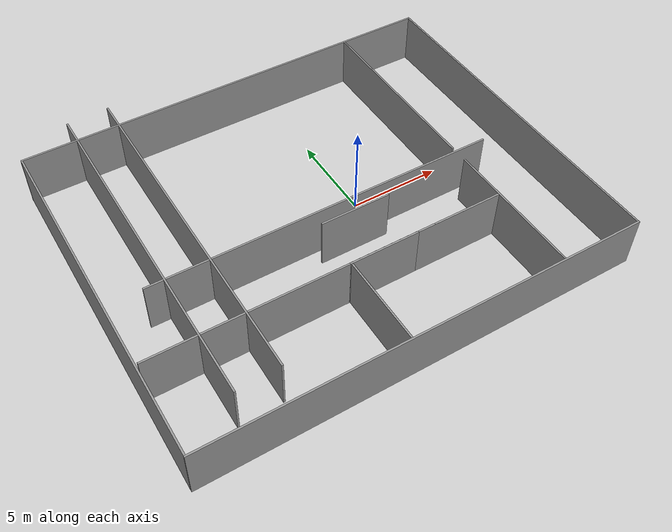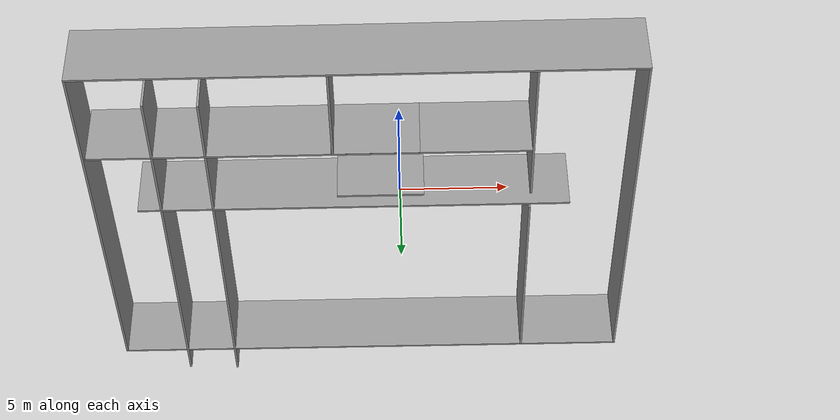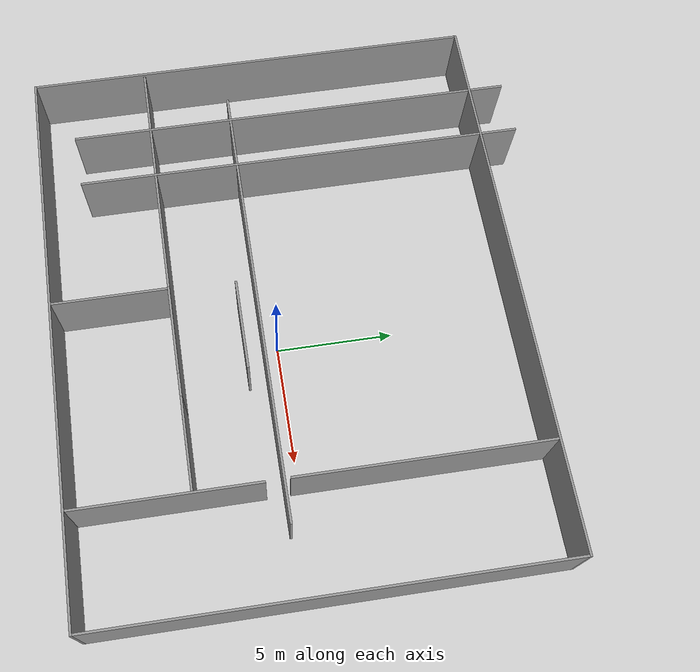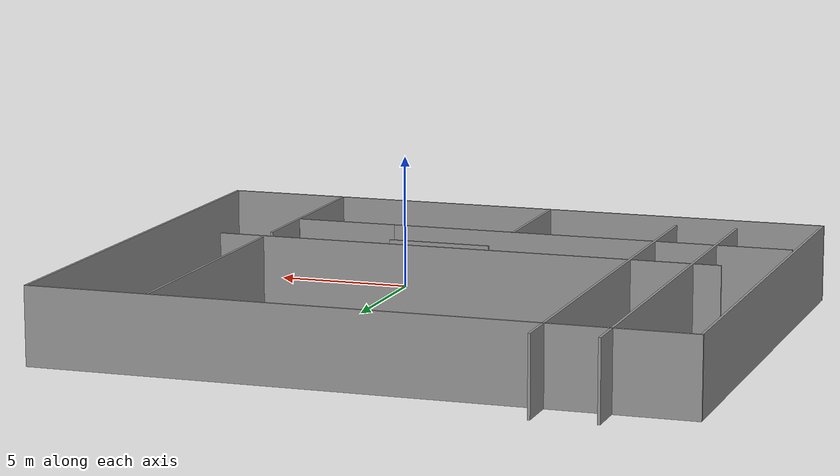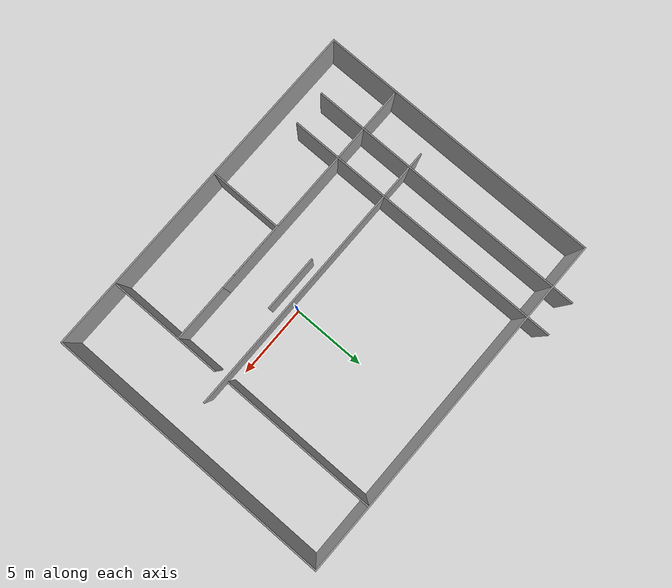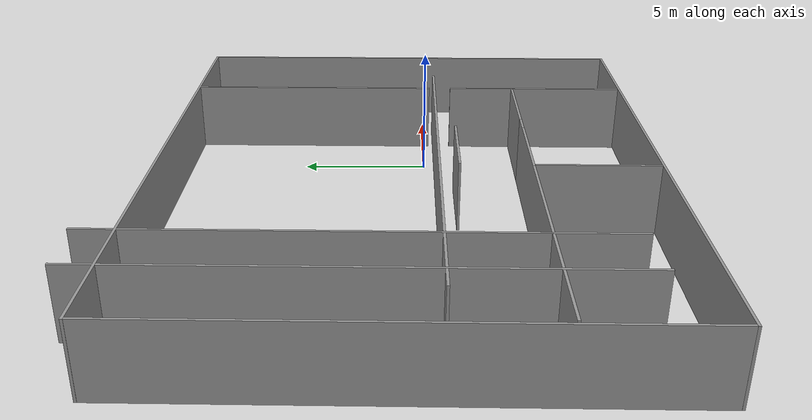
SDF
<?xml version='1.0'?>
<sdf version='1.6'>
  <model name='unit_box'>
    <link name='link_0'>
      <inertial>
        <mass>1</mass>
        <inertia>
          <ixx>0.166667</ixx>
          <ixy>0</ixy>
          <ixz>0</ixz>
          <iyy>0.166667</iyy>
          <iyz>0</iyz>
          <izz>0.166667</izz>
        </inertia>
        <pose frame=''>0 0 0 0 -0 0</pose>
      </inertial>
      <pose frame=''>-1.74944 -9.3849 9.7e-05 -1e-05 0 0</pose>
      <gravity>0</gravity>
      <self_collide>0</self_collide>
      <kinematic>0</kinematic>
      <enable_wind>0</enable_wind>
      <visual name='visual'>
        <pose frame=''>0 0 0 0 -0 0</pose>
        <geometry>
          <box>
            <size>25 0.1 3</size>
          </box>
        </geometry>
        <material>
          <lighting>1</lighting>
          <script>
            <uri>file://media/materials/scripts/gazebo.material</uri>
            <name>Gazebo/Grey</name>
          </script>
          <shader type='vertex'>
            <normal_map>__default__</normal_map>
          </shader>
          <ambient>0.3 0.3 0.3 1</ambient>
          <diffuse>0.7 0.7 0.7 1</diffuse>
          <specular>0.01 0.01 0.01 1</specular>
          <emissive>0 0 0 1</emissive>
        </material>
        <transparency>0</transparency>
        <cast_shadows>1</cast_shadows>
      </visual>
      <collision name='collision'>
        <laser_retro>0</laser_retro>
        <max_contacts>10</max_contacts>
        <pose frame=''>0 0 0 0 -0 0</pose>
        <geometry>
          <box>
            <size>25 0.1 3</size>
          </box>
        </geometry>
        <surface>
          <friction>
            <ode>
              <mu>1</mu>
              <mu2>1</mu2>
              <fdir1>0 0 0</fdir1>
              <slip1>0</slip1>
              <slip2>0</slip2>
            </ode>
            <torsional>
              <coefficient>1</coefficient>
              <patch_radius>0</patch_radius>
              <surface_radius>0</surface_radius>
              <use_patch_radius>1</use_patch_radius>
              <ode>
                <slip>0</slip>
              </ode>
            </torsional>
          </friction>
          <bounce>
            <restitution_coefficient>0</restitution_coefficient>
            <threshold>1e+06</threshold>
          </bounce>
          <contact>
            <collide_without_contact>0</collide_without_contact>
            <collide_without_contact_bitmask>1</collide_without_contact_bitmask>
            <collide_bitmask>1</collide_bitmask>
            <ode>
              <soft_cfm>0</soft_cfm>
              <soft_erp>0.2</soft_erp>
              <kp>1e+13</kp>
              <kd>1</kd>
              <max_vel>0.01</max_vel>
              <min_depth>0</min_depth>
            </ode>
            <bullet>
              <split_impulse>1</split_impulse>
              <split_impulse_penetration_threshold>-0.01</split_impulse_penetration_threshold>
              <soft_cfm>0</soft_cfm>
              <soft_erp>0.2</soft_erp>
              <kp>1e+13</kp>
              <kd>1</kd>
            </bullet>
          </contact>
        </surface>
      </collision>
    </link>
    <link name='link_0_clone'>
      <inertial>
        <mass>1</mass>
        <inertia>
          <ixx>0.166667</ixx>
          <ixy>0</ixy>
          <ixz>0</ixz>
          <iyy>0.166667</iyy>
          <iyz>0</iyz>
          <izz>0.166667</izz>
        </inertia>
        <pose frame=''>0 0 0 0 -0 0</pose>
      </inertial>
      <pose frame=''>-1.73531 10.7135 -3.9e-05 -2e-05 0 0</pose>
      <gravity>1</gravity>
      <self_collide>0</self_collide>
      <kinematic>0</kinematic>
      <enable_wind>0</enable_wind>
      <visual name='visual'>
        <pose frame=''>0 0 0 0 -0 0</pose>
        <geometry>
          <box>
            <size>25 0.1 3</size>
          </box>
        </geometry>
        <material>
          <lighting>1</lighting>
          <script>
            <uri>file://media/materials/scripts/gazebo.material</uri>
            <name>Gazebo/Grey</name>
          </script>
          <shader type='vertex'>
            <normal_map>__default__</normal_map>
          </shader>
          <ambient>0.3 0.3 0.3 1</ambient>
          <diffuse>0.7 0.7 0.7 1</diffuse>
          <specular>0.01 0.01 0.01 1</specular>
          <emissive>0 0 0 1</emissive>
        </material>
        <transparency>0</transparency>
        <cast_shadows>1</cast_shadows>
      </visual>
      <collision name='collision'>
        <laser_retro>0</laser_retro>
        <max_contacts>10</max_contacts>
        <pose frame=''>0 0 0 0 -0 0</pose>
        <geometry>
          <box>
            <size>25 0.1 3</size>
          </box>
        </geometry>
        <surface>
          <friction>
            <ode>
              <mu>1</mu>
              <mu2>1</mu2>
              <fdir1>0 0 0</fdir1>
              <slip1>0</slip1>
              <slip2>0</slip2>
            </ode>
            <torsional>
              <coefficient>1</coefficient>
              <patch_radius>0</patch_radius>
              <surface_radius>0</surface_radius>
              <use_patch_radius>1</use_patch_radius>
              <ode>
                <slip>0</slip>
              </ode>
            </torsional>
          </friction>
          <bounce>
            <restitution_coefficient>0</restitution_coefficient>
            <threshold>1e+06</threshold>
          </bounce>
          <contact>
            <collide_without_contact>0</collide_without_contact>
            <collide_without_contact_bitmask>1</collide_without_contact_bitmask>
            <collide_bitmask>1</collide_bitmask>
            <ode>
              <soft_cfm>0</soft_cfm>
              <soft_erp>0.2</soft_erp>
              <kp>1e+13</kp>
              <kd>1</kd>
              <max_vel>0.01</max_vel>
              <min_depth>0</min_depth>
            </ode>
            <bullet>
              <split_impulse>1</split_impulse>
              <split_impulse_penetration_threshold>-0.01</split_impulse_penetration_threshold>
              <soft_cfm>0</soft_cfm>
              <soft_erp>0.2</soft_erp>
              <kp>1e+13</kp>
              <kd>1</kd>
            </bullet>
          </contact>
        </surface>
      </collision>
    </link>
    <link name='link_0_clone_0'>
      <inertial>
        <mass>1</mass>
        <inertia>
          <ixx>0.166667</ixx>
          <ixy>0</ixy>
          <ixz>0</ixz>
          <iyy>0.166667</iyy>
          <iyz>0</iyz>
          <izz>0.166667</izz>
        </inertia>
        <pose frame=''>0 0 0 0 -0 0</pose>
      </inertial>
      <pose frame=''>10.7084 0.664647 6e-05 -2e-05 0 0</pose>
      <gravity>1</gravity>
      <self_collide>0</self_collide>
      <kinematic>0</kinematic>
      <enable_wind>0</enable_wind>
      <visual name='visual'>
        <pose frame=''>0 0 0 0 -0 1.57</pose>
        <geometry>
          <box>
            <size>20 0.1 3</size>
          </box>
        </geometry>
        <material>
          <lighting>1</lighting>
          <script>
            <uri>file://media/materials/scripts/gazebo.material</uri>
            <name>Gazebo/Grey</name>
          </script>
          <shader type='vertex'>
            <normal_map>__default__</normal_map>
          </shader>
          <ambient>0.3 0.3 0.3 1</ambient>
          <diffuse>0.7 0.7 0.7 1</diffuse>
          <specular>0.01 0.01 0.01 1</specular>
          <emissive>0 0 0 1</emissive>
        </material>
        <transparency>0</transparency>
        <cast_shadows>1</cast_shadows>
      </visual>
      <collision name='collision'>
        <laser_retro>0</laser_retro>
        <max_contacts>10</max_contacts>
        <pose frame=''>0 0 0 0 -0 1.57</pose>
        <geometry>
          <box>
            <size>20 0.1 3</size>
          </box>
        </geometry>
        <surface>
          <friction>
            <ode>
              <mu>1</mu>
              <mu2>1</mu2>
              <fdir1>0 0 0</fdir1>
              <slip1>0</slip1>
              <slip2>0</slip2>
            </ode>
            <torsional>
              <coefficient>1</coefficient>
              <patch_radius>0</patch_radius>
              <surface_radius>0</surface_radius>
              <use_patch_radius>1</use_patch_radius>
              <ode>
                <slip>0</slip>
              </ode>
            </torsional>
          </friction>
          <bounce>
            <restitution_coefficient>0</restitution_coefficient>
            <threshold>1e+06</threshold>
          </bounce>
          <contact>
            <collide_without_contact>0</collide_without_contact>
            <collide_without_contact_bitmask>1</collide_without_contact_bitmask>
            <collide_bitmask>1</collide_bitmask>
            <ode>
              <soft_cfm>0</soft_cfm>
              <soft_erp>0.2</soft_erp>
              <kp>1e+13</kp>
              <kd>1</kd>
              <max_vel>0.01</max_vel>
              <min_depth>0</min_depth>
            </ode>
            <bullet>
              <split_impulse>1</split_impulse>
              <split_impulse_penetration_threshold>-0.01</split_impulse_penetration_threshold>
              <soft_cfm>0</soft_cfm>
              <soft_erp>0.2</soft_erp>
              <kp>1e+13</kp>
              <kd>1</kd>
            </bullet>
          </contact>
        </surface>
      </collision>
    </link>
    <link name='link_0_clone_0_clone'>
      <inertial>
        <mass>1</mass>
        <inertia>
          <ixx>0.166667</ixx>
          <ixy>0</ixy>
          <ixz>0</ixz>
          <iyy>0.166667</iyy>
          <iyz>0</iyz>
          <izz>0.166667</izz>
        </inertia>
        <pose frame=''>0 0 0 0 -0 0</pose>
      </inertial>
      <pose frame=''>-14.1905 0.662833 8.1e-05 -3e-05 0 0</pose>
      <gravity>1</gravity>
      <self_collide>0</self_collide>
      <kinematic>0</kinematic>
      <enable_wind>0</enable_wind>
      <visual name='visual'>
        <pose frame=''>0 0 0 0 -0 1.57</pose>
        <geometry>
          <box>
            <size>20 0.1 3</size>
          </box>
        </geometry>
        <material>
          <lighting>1</lighting>
          <script>
            <uri>file://media/materials/scripts/gazebo.material</uri>
            <name>Gazebo/Grey</name>
          </script>
          <shader type='vertex'>
            <normal_map>__default__</normal_map>
          </shader>
          <ambient>0.3 0.3 0.3 1</ambient>
          <diffuse>0.7 0.7 0.7 1</diffuse>
          <specular>0.01 0.01 0.01 1</specular>
          <emissive>0 0 0 1</emissive>
        </material>
        <transparency>0</transparency>
        <cast_shadows>1</cast_shadows>
      </visual>
      <collision name='collision'>
        <laser_retro>0</laser_retro>
        <max_contacts>10</max_contacts>
        <pose frame=''>0 0 0 0 -0 1.57</pose>
        <geometry>
          <box>
            <size>20 0.1 3</size>
          </box>
        </geometry>
        <surface>
          <friction>
            <ode>
              <mu>1</mu>
              <mu2>1</mu2>
              <fdir1>0 0 0</fdir1>
              <slip1>0</slip1>
              <slip2>0</slip2>
            </ode>
            <torsional>
              <coefficient>1</coefficient>
              <patch_radius>0</patch_radius>
              <surface_radius>0</surface_radius>
              <use_patch_radius>1</use_patch_radius>
              <ode>
                <slip>0</slip>
              </ode>
            </torsional>
          </friction>
          <bounce>
            <restitution_coefficient>0</restitution_coefficient>
            <threshold>1e+06</threshold>
          </bounce>
          <contact>
            <collide_without_contact>0</collide_without_contact>
            <collide_without_contact_bitmask>1</collide_without_contact_bitmask>
            <collide_bitmask>1</collide_bitmask>
            <ode>
              <soft_cfm>0</soft_cfm>
              <soft_erp>0.2</soft_erp>
              <kp>1e+13</kp>
              <kd>1</kd>
              <max_vel>0.01</max_vel>
              <min_depth>0</min_depth>
            </ode>
            <bullet>
              <split_impulse>1</split_impulse>
              <split_impulse_penetration_threshold>-0.01</split_impulse_penetration_threshold>
              <soft_cfm>0</soft_cfm>
              <soft_erp>0.2</soft_erp>
              <kp>1e+13</kp>
              <kd>1</kd>
            </bullet>
          </contact>
        </surface>
      </collision>
    </link>
    <link name='link_0_clone_0_clone_0'>
      <inertial>
        <mass>1</mass>
        <inertia>
          <ixx>0.166667</ixx>
          <ixy>0</ixy>
          <ixz>0</ixz>
          <iyy>0.166667</iyy>
          <iyz>0</iyz>
          <izz>0.166667</izz>
        </inertia>
        <pose frame=''>0 0 0 0 -0 0</pose>
      </inertial>
      <pose frame=''>3.93654 -4.27012 9.8e-05 -3e-05 0 0</pose>
      <gravity>1</gravity>
      <self_collide>0</self_collide>
      <kinematic>0</kinematic>
      <enable_wind>0</enable_wind>
      <visual name='visual'>
        <pose frame=''>0 0 0 0 -0 0</pose>
        <geometry>
          <box>
            <size>4 0.1 3</size>
          </box>
        </geometry>
        <material>
          <lighting>1</lighting>
          <script>
            <uri>file://media/materials/scripts/gazebo.material</uri>
            <name>Gazebo/Grey</name>
          </script>
          <shader type='vertex'>
            <normal_map>__default__</normal_map>
          </shader>
          <ambient>0.3 0.3 0.3 1</ambient>
          <diffuse>0.7 0.7 0.7 1</diffuse>
          <specular>0.01 0.01 0.01 1</specular>
          <emissive>0 0 0 1</emissive>
        </material>
        <transparency>0</transparency>
        <cast_shadows>1</cast_shadows>
      </visual>
      <collision name='collision'>
        <laser_retro>0</laser_retro>
        <max_contacts>10</max_contacts>
        <pose frame=''>0 0 0 0 -0 0</pose>
        <geometry>
          <box>
            <size>4 0.1 3</size>
          </box>
        </geometry>
        <surface>
          <friction>
            <ode>
              <mu>1</mu>
              <mu2>1</mu2>
              <fdir1>0 0 0</fdir1>
              <slip1>0</slip1>
              <slip2>0</slip2>
            </ode>
            <torsional>
              <coefficient>1</coefficient>
              <patch_radius>0</patch_radius>
              <surface_radius>0</surface_radius>
              <use_patch_radius>1</use_patch_radius>
              <ode>
                <slip>0</slip>
              </ode>
            </torsional>
          </friction>
          <bounce>
            <restitution_coefficient>0</restitution_coefficient>
            <threshold>1e+06</threshold>
          </bounce>
          <contact>
            <collide_without_contact>0</collide_without_contact>
            <collide_without_contact_bitmask>1</collide_without_contact_bitmask>
            <collide_bitmask>1</collide_bitmask>
            <ode>
              <soft_cfm>0</soft_cfm>
              <soft_erp>0.2</soft_erp>
              <kp>1e+13</kp>
              <kd>1</kd>
              <max_vel>0.01</max_vel>
              <min_depth>0</min_depth>
            </ode>
            <bullet>
              <split_impulse>1</split_impulse>
              <split_impulse_penetration_threshold>-0.01</split_impulse_penetration_threshold>
              <soft_cfm>0</soft_cfm>
              <soft_erp>0.2</soft_erp>
              <kp>1e+13</kp>
              <kd>1</kd>
            </bullet>
          </contact>
        </surface>
      </collision>
    </link>
    <link name='link_0_clone_0_clone_0_clone'>
      <inertial>
        <mass>1</mass>
        <inertia>
          <ixx>0.166667</ixx>
          <ixy>0</ixy>
          <ixz>0</ixz>
          <iyy>0.166667</iyy>
          <iyz>0</iyz>
          <izz>0.166667</izz>
        </inertia>
        <pose frame=''>0 0 0 0 -0 0</pose>
      </inertial>
      <pose frame=''>5.9884 -5.32135 0.000106 -4e-05 0 0</pose>
      <gravity>1</gravity>
      <self_collide>0</self_collide>
      <kinematic>0</kinematic>
      <enable_wind>0</enable_wind>
      <visual name='visual'>
        <pose frame=''>0 0 0 0 -0 1.57</pose>
        <geometry>
          <box>
            <size>8 0.1 3</size>
          </box>
        </geometry>
        <material>
          <lighting>1</lighting>
          <script>
            <uri>file://media/materials/scripts/gazebo.material</uri>
            <name>Gazebo/Grey</name>
          </script>
          <shader type='vertex'>
            <normal_map>__default__</normal_map>
          </shader>
          <ambient>0.3 0.3 0.3 1</ambient>
          <diffuse>0.7 0.7 0.7 1</diffuse>
          <specular>0.01 0.01 0.01 1</specular>
          <emissive>0 0 0 1</emissive>
        </material>
        <transparency>0</transparency>
        <cast_shadows>1</cast_shadows>
      </visual>
      <collision name='collision'>
        <laser_retro>0</laser_retro>
        <max_contacts>10</max_contacts>
        <pose frame=''>0 0 0 0 -0 1.57</pose>
        <geometry>
          <box>
            <size>8 0.1 3</size>
          </box>
        </geometry>
        <surface>
          <friction>
            <ode>
              <mu>1</mu>
              <mu2>1</mu2>
              <fdir1>0 0 0</fdir1>
              <slip1>0</slip1>
              <slip2>0</slip2>
            </ode>
            <torsional>
              <coefficient>1</coefficient>
              <patch_radius>0</patch_radius>
              <surface_radius>0</surface_radius>
              <use_patch_radius>1</use_patch_radius>
              <ode>
                <slip>0</slip>
              </ode>
            </torsional>
          </friction>
          <bounce>
            <restitution_coefficient>0</restitution_coefficient>
            <threshold>1e+06</threshold>
          </bounce>
          <contact>
            <collide_without_contact>0</collide_without_contact>
            <collide_without_contact_bitmask>1</collide_without_contact_bitmask>
            <collide_bitmask>1</collide_bitmask>
            <ode>
              <soft_cfm>0</soft_cfm>
              <soft_erp>0.2</soft_erp>
              <kp>1e+13</kp>
              <kd>1</kd>
              <max_vel>0.01</max_vel>
              <min_depth>0</min_depth>
            </ode>
            <bullet>
              <split_impulse>1</split_impulse>
              <split_impulse_penetration_threshold>-0.01</split_impulse_penetration_threshold>
              <soft_cfm>0</soft_cfm>
              <soft_erp>0.2</soft_erp>
              <kp>1e+13</kp>
              <kd>1</kd>
            </bullet>
          </contact>
        </surface>
      </collision>
    </link>
    <link name='link_0_clone_0_clone_0_clone_0'>
      <inertial>
        <mass>1</mass>
        <inertia>
          <ixx>0.166667</ixx>
          <ixy>0</ixy>
          <ixz>0</ixz>
          <iyy>0.166667</iyy>
          <iyz>0</iyz>
          <izz>0.166667</izz>
        </inertia>
        <pose frame=''>0 0 0 0 -0 0</pose>
      </inertial>
      <pose frame=''>-2.18362 -0.565055 5.2e-05 -4e-05 0 0</pose>
      <gravity>1</gravity>
      <self_collide>0</self_collide>
      <kinematic>0</kinematic>
      <enable_wind>0</enable_wind>
      <visual name='visual'>
        <pose frame=''>0 0 0 0 -0 0</pose>
        <geometry>
          <box>
            <size>20 0.1 3</size>
          </box>
        </geometry>
        <material>
          <lighting>1</lighting>
          <script>
            <uri>file://media/materials/scripts/gazebo.material</uri>
            <name>Gazebo/Grey</name>
          </script>
          <shader type='vertex'>
            <normal_map>__default__</normal_map>
          </shader>
          <ambient>0.3 0.3 0.3 1</ambient>
          <diffuse>0.7 0.7 0.7 1</diffuse>
          <specular>0.01 0.01 0.01 1</specular>
          <emissive>0 0 0 1</emissive>
        </material>
        <transparency>0</transparency>
        <cast_shadows>1</cast_shadows>
      </visual>
      <collision name='collision'>
        <laser_retro>0</laser_retro>
        <max_contacts>10</max_contacts>
        <pose frame=''>0 0 0 0 -0 0</pose>
        <geometry>
          <box>
            <size>20 0.1 3</size>
          </box>
        </geometry>
        <surface>
          <friction>
            <ode>
              <mu>1</mu>
              <mu2>1</mu2>
              <fdir1>0 0 0</fdir1>
              <slip1>0</slip1>
              <slip2>0</slip2>
            </ode>
            <torsional>
              <coefficient>1</coefficient>
              <patch_radius>0</patch_radius>
              <surface_radius>0</surface_radius>
              <use_patch_radius>1</use_patch_radius>
              <ode>
                <slip>0</slip>
              </ode>
            </torsional>
          </friction>
          <bounce>
            <restitution_coefficient>0</restitution_coefficient>
            <threshold>1e+06</threshold>
          </bounce>
          <contact>
            <collide_without_contact>0</collide_without_contact>
            <collide_without_contact_bitmask>1</collide_without_contact_bitmask>
            <collide_bitmask>1</collide_bitmask>
            <ode>
              <soft_cfm>0</soft_cfm>
              <soft_erp>0.2</soft_erp>
              <kp>1e+13</kp>
              <kd>1</kd>
              <max_vel>0.01</max_vel>
              <min_depth>0</min_depth>
            </ode>
            <bullet>
              <split_impulse>1</split_impulse>
              <split_impulse_penetration_threshold>-0.01</split_impulse_penetration_threshold>
              <soft_cfm>0</soft_cfm>
              <soft_erp>0.2</soft_erp>
              <kp>1e+13</kp>
              <kd>1</kd>
            </bullet>
          </contact>
        </surface>
      </collision>
    </link>
    <link name='link_0_clone_0_clone_0_clone_1'>
      <inertial>
        <mass>1</mass>
        <inertia>
          <ixx>0.166667</ixx>
          <ixy>0</ixy>
          <ixz>0</ixz>
          <iyy>0.166667</iyy>
          <iyz>0</iyz>
          <izz>0.166667</izz>
        </inertia>
        <pose frame=''>0 0 0 0 -0 0</pose>
      </inertial>
      <pose frame=''>-4.05712 -4.27062 8.9e-05 -4e-05 0 0</pose>
      <gravity>1</gravity>
      <self_collide>0</self_collide>
      <kinematic>0</kinematic>
      <enable_wind>0</enable_wind>
      <visual name='visual'>
        <pose frame=''>0 0 0 0 -0 0</pose>
        <geometry>
          <box>
            <size>20 0.1 3</size>
          </box>
        </geometry>
        <material>
          <lighting>1</lighting>
          <script>
            <uri>file://media/materials/scripts/gazebo.material</uri>
            <name>Gazebo/Grey</name>
          </script>
          <shader type='vertex'>
            <normal_map>__default__</normal_map>
          </shader>
          <ambient>0.3 0.3 0.3 1</ambient>
          <diffuse>0.7 0.7 0.7 1</diffuse>
          <specular>0.01 0.01 0.01 1</specular>
          <emissive>0 0 0 1</emissive>
        </material>
        <transparency>0</transparency>
        <cast_shadows>1</cast_shadows>
      </visual>
      <collision name='collision'>
        <laser_retro>0</laser_retro>
        <max_contacts>10</max_contacts>
        <pose frame=''>0 0 0 0 -0 0</pose>
        <geometry>
          <box>
            <size>20 0.1 3</size>
          </box>
        </geometry>
        <surface>
          <friction>
            <ode>
              <mu>1</mu>
              <mu2>1</mu2>
              <fdir1>0 0 0</fdir1>
              <slip1>0</slip1>
              <slip2>0</slip2>
            </ode>
            <torsional>
              <coefficient>1</coefficient>
              <patch_radius>0</patch_radius>
              <surface_radius>0</surface_radius>
              <use_patch_radius>1</use_patch_radius>
              <ode>
                <slip>0</slip>
              </ode>
            </torsional>
          </friction>
          <bounce>
            <restitution_coefficient>0</restitution_coefficient>
            <threshold>1e+06</threshold>
          </bounce>
          <contact>
            <collide_without_contact>0</collide_without_contact>
            <collide_without_contact_bitmask>1</collide_without_contact_bitmask>
            <collide_bitmask>1</collide_bitmask>
            <ode>
              <soft_cfm>0</soft_cfm>
              <soft_erp>0.2</soft_erp>
              <kp>1e+13</kp>
              <kd>1</kd>
              <max_vel>0.01</max_vel>
              <min_depth>0</min_depth>
            </ode>
            <bullet>
              <split_impulse>1</split_impulse>
              <split_impulse_penetration_threshold>-0.01</split_impulse_penetration_threshold>
              <soft_cfm>0</soft_cfm>
              <soft_erp>0.2</soft_erp>
              <kp>1e+13</kp>
              <kd>1</kd>
            </bullet>
          </contact>
        </surface>
      </collision>
    </link>
    <link name='link_0_clone_0_clone_0_clone_2'>
      <inertial>
        <mass>1</mass>
        <inertia>
          <ixx>0.166667</ixx>
          <ixy>0</ixy>
          <ixz>0</ixz>
          <iyy>0.166667</iyy>
          <iyz>0</iyz>
          <izz>0.166667</izz>
        </inertia>
        <pose frame=''>0 0 0 0 -0 0</pose>
      </inertial>
      <pose frame=''>-8.6633 2.36492 2.2e-05 -4e-05 0 0</pose>
      <gravity>1</gravity>
      <self_collide>0</self_collide>
      <kinematic>0</kinematic>
      <enable_wind>0</enable_wind>
      <visual name='visual'>
        <pose frame=''>0 0 0 0 -0 1.57</pose>
        <geometry>
          <box>
            <size>20 0.1 3</size>
          </box>
        </geometry>
        <material>
          <lighting>1</lighting>
          <script>
            <uri>file://media/materials/scripts/gazebo.material</uri>
            <name>Gazebo/Grey</name>
          </script>
          <shader type='vertex'>
            <normal_map>__default__</normal_map>
          </shader>
          <ambient>0.3 0.3 0.3 1</ambient>
          <diffuse>0.7 0.7 0.7 1</diffuse>
          <specular>0.01 0.01 0.01 1</specular>
          <emissive>0 0 0 1</emissive>
        </material>
        <transparency>0</transparency>
        <cast_shadows>1</cast_shadows>
      </visual>
      <collision name='collision'>
        <laser_retro>0</laser_retro>
        <max_contacts>10</max_contacts>
        <pose frame=''>0 0 0 0 -0 1.57</pose>
        <geometry>
          <box>
            <size>20 0.1 3</size>
          </box>
        </geometry>
        <surface>
          <friction>
            <ode>
              <mu>1</mu>
              <mu2>1</mu2>
              <fdir1>0 0 0</fdir1>
              <slip1>0</slip1>
              <slip2>0</slip2>
            </ode>
            <torsional>
              <coefficient>1</coefficient>
              <patch_radius>0</patch_radius>
              <surface_radius>0</surface_radius>
              <use_patch_radius>1</use_patch_radius>
              <ode>
                <slip>0</slip>
              </ode>
            </torsional>
          </friction>
          <bounce>
            <restitution_coefficient>0</restitution_coefficient>
            <threshold>1e+06</threshold>
          </bounce>
          <contact>
            <collide_without_contact>0</collide_without_contact>
            <collide_without_contact_bitmask>1</collide_without_contact_bitmask>
            <collide_bitmask>1</collide_bitmask>
            <ode>
              <soft_cfm>0</soft_cfm>
              <soft_erp>0.2</soft_erp>
              <kp>1e+13</kp>
              <kd>1</kd>
              <max_vel>0.01</max_vel>
              <min_depth>0</min_depth>
            </ode>
            <bullet>
              <split_impulse>1</split_impulse>
              <split_impulse_penetration_threshold>-0.01</split_impulse_penetration_threshold>
              <soft_cfm>0</soft_cfm>
              <soft_erp>0.2</soft_erp>
              <kp>1e+13</kp>
              <kd>1</kd>
            </bullet>
          </contact>
        </surface>
      </collision>
    </link>
    <link name='link_0_clone_0_clone_0_clone_3'>
      <inertial>
        <mass>1</mass>
        <inertia>
          <ixx>0.166667</ixx>
          <ixy>0</ixy>
          <ixz>0</ixz>
          <iyy>0.166667</iyy>
          <iyz>0</iyz>
          <izz>0.166667</izz>
        </inertia>
        <pose frame=''>0 0 0 0 -0 0</pose>
      </inertial>
      <pose frame=''>-11.0753 2.25342 2.3e-05 -4e-05 0 0</pose>
      <gravity>1</gravity>
      <self_collide>0</self_collide>
      <kinematic>0</kinematic>
      <enable_wind>0</enable_wind>
      <visual name='visual'>
        <pose frame=''>0 0 0 0 -0 1.57</pose>
        <geometry>
          <box>
            <size>20 0.1 3</size>
          </box>
        </geometry>
        <material>
          <lighting>1</lighting>
          <script>
            <uri>file://media/materials/scripts/gazebo.material</uri>
            <name>Gazebo/Grey</name>
          </script>
          <shader type='vertex'>
            <normal_map>__default__</normal_map>
          </shader>
          <ambient>0.3 0.3 0.3 1</ambient>
          <diffuse>0.7 0.7 0.7 1</diffuse>
          <specular>0.01 0.01 0.01 1</specular>
          <emissive>0 0 0 1</emissive>
        </material>
        <transparency>0</transparency>
        <cast_shadows>1</cast_shadows>
      </visual>
      <collision name='collision'>
        <laser_retro>0</laser_retro>
        <max_contacts>10</max_contacts>
        <pose frame=''>0 0 0 0 -0 1.57</pose>
        <geometry>
          <box>
            <size>20 0.1 3</size>
          </box>
        </geometry>
        <surface>
          <friction>
            <ode>
              <mu>1</mu>
              <mu2>1</mu2>
              <fdir1>0 0 0</fdir1>
              <slip1>0</slip1>
              <slip2>0</slip2>
            </ode>
            <torsional>
              <coefficient>1</coefficient>
              <patch_radius>0</patch_radius>
              <surface_radius>0</surface_radius>
              <use_patch_radius>1</use_patch_radius>
              <ode>
                <slip>0</slip>
              </ode>
            </torsional>
          </friction>
          <bounce>
            <restitution_coefficient>0</restitution_coefficient>
            <threshold>1e+06</threshold>
          </bounce>
          <contact>
            <collide_without_contact>0</collide_without_contact>
            <collide_without_contact_bitmask>1</collide_without_contact_bitmask>
            <collide_bitmask>1</collide_bitmask>
            <ode>
              <soft_cfm>0</soft_cfm>
              <soft_erp>0.2</soft_erp>
              <kp>1e+13</kp>
              <kd>1</kd>
              <max_vel>0.01</max_vel>
              <min_depth>0</min_depth>
            </ode>
            <bullet>
              <split_impulse>1</split_impulse>
              <split_impulse_penetration_threshold>-0.01</split_impulse_penetration_threshold>
              <soft_cfm>0</soft_cfm>
              <soft_erp>0.2</soft_erp>
              <kp>1e+13</kp>
              <kd>1</kd>
            </bullet>
          </contact>
        </surface>
      </collision>
    </link>
    <link name='link_0_clone_0_clone_0_clone_4'>
      <inertial>
        <mass>1</mass>
        <inertia>
          <ixx>0.166667</ixx>
          <ixy>0</ixy>
          <ixz>0</ixz>
          <iyy>0.166667</iyy>
          <iyz>0</iyz>
          <izz>0.166667</izz>
        </inertia>
        <pose frame=''>0 0 0 0 -0 0</pose>
      </inertial>
      <pose frame=''>-1.05992 -4.27439 0.00014 -4e-05 0 0</pose>
      <gravity>1</gravity>
      <self_collide>0</self_collide>
      <kinematic>0</kinematic>
      <enable_wind>0</enable_wind>
      <visual name='visual'>
        <pose frame=''>0 0 0 0 -0 0</pose>
        <geometry>
          <box>
            <size>4 0.1 3</size>
          </box>
        </geometry>
        <material>
          <lighting>1</lighting>
          <script>
            <uri>file://media/materials/scripts/gazebo.material</uri>
            <name>Gazebo/Grey</name>
          </script>
          <shader type='vertex'>
            <normal_map>__default__</normal_map>
          </shader>
          <ambient>0.3 0.3 0.3 1</ambient>
          <diffuse>0.7 0.7 0.7 1</diffuse>
          <specular>0.01 0.01 0.01 1</specular>
          <emissive>0 0 0 1</emissive>
        </material>
        <transparency>0</transparency>
        <cast_shadows>1</cast_shadows>
      </visual>
      <collision name='collision'>
        <laser_retro>0</laser_retro>
        <max_contacts>10</max_contacts>
        <pose frame=''>0 0 0 0 -0 0</pose>
        <geometry>
          <box>
            <size>4 0.1 3</size>
          </box>
        </geometry>
        <surface>
          <friction>
            <ode>
              <mu>1</mu>
              <mu2>1</mu2>
              <fdir1>0 0 0</fdir1>
              <slip1>0</slip1>
              <slip2>0</slip2>
            </ode>
            <torsional>
              <coefficient>1</coefficient>
              <patch_radius>0</patch_radius>
              <surface_radius>0</surface_radius>
              <use_patch_radius>1</use_patch_radius>
              <ode>
                <slip>0</slip>
              </ode>
            </torsional>
          </friction>
          <bounce>
            <restitution_coefficient>0</restitution_coefficient>
            <threshold>1e+06</threshold>
          </bounce>
          <contact>
            <collide_without_contact>0</collide_without_contact>
            <collide_without_contact_bitmask>1</collide_without_contact_bitmask>
            <collide_bitmask>1</collide_bitmask>
            <ode>
              <soft_cfm>0</soft_cfm>
              <soft_erp>0.2</soft_erp>
              <kp>1e+13</kp>
              <kd>1</kd>
              <max_vel>0.01</max_vel>
              <min_depth>0</min_depth>
            </ode>
            <bullet>
              <split_impulse>1</split_impulse>
              <split_impulse_penetration_threshold>-0.01</split_impulse_penetration_threshold>
              <soft_cfm>0</soft_cfm>
              <soft_erp>0.2</soft_erp>
              <kp>1e+13</kp>
              <kd>1</kd>
            </bullet>
          </contact>
        </surface>
      </collision>
    </link>
    <link name='link_0_clone_0_clone_0_clone_5'>
      <inertial>
        <mass>1</mass>
        <inertia>
          <ixx>0.166667</ixx>
          <ixy>0</ixy>
          <ixz>0</ixz>
          <iyy>0.166667</iyy>
          <iyz>0</iyz>
          <izz>0.166667</izz>
        </inertia>
        <pose frame=''>0 0 0 0 -0 0</pose>
      </inertial>
      <pose frame=''>-0.892933 -1.36992 0.000112 -4e-05 0 0</pose>
      <gravity>1</gravity>
      <self_collide>0</self_collide>
      <kinematic>0</kinematic>
      <enable_wind>0</enable_wind>
      <visual name='visual'>
        <pose frame=''>0 0 0 0 -0 0</pose>
        <geometry>
          <box>
            <size>4 0.1 3</size>
          </box>
        </geometry>
        <material>
          <lighting>1</lighting>
          <script>
            <uri>file://media/materials/scripts/gazebo.material</uri>
            <name>Gazebo/Grey</name>
          </script>
          <shader type='vertex'>
            <normal_map>__default__</normal_map>
          </shader>
          <ambient>0.3 0.3 0.3 1</ambient>
          <diffuse>0.7 0.7 0.7 1</diffuse>
          <specular>0.01 0.01 0.01 1</specular>
          <emissive>0 0 0 1</emissive>
        </material>
        <transparency>0</transparency>
        <cast_shadows>1</cast_shadows>
      </visual>
      <collision name='collision'>
        <laser_retro>0</laser_retro>
        <max_contacts>10</max_contacts>
        <pose frame=''>0 0 0 0 -0 0</pose>
        <geometry>
          <box>
            <size>4 0.1 3</size>
          </box>
        </geometry>
        <surface>
          <friction>
            <ode>
              <mu>1</mu>
              <mu2>1</mu2>
              <fdir1>0 0 0</fdir1>
              <slip1>0</slip1>
              <slip2>0</slip2>
            </ode>
            <torsional>
              <coefficient>1</coefficient>
              <patch_radius>0</patch_radius>
              <surface_radius>0</surface_radius>
              <use_patch_radius>1</use_patch_radius>
              <ode>
                <slip>0</slip>
              </ode>
            </torsional>
          </friction>
          <bounce>
            <restitution_coefficient>0</restitution_coefficient>
            <threshold>1e+06</threshold>
          </bounce>
          <contact>
            <collide_without_contact>0</collide_without_contact>
            <collide_without_contact_bitmask>1</collide_without_contact_bitmask>
            <collide_bitmask>1</collide_bitmask>
            <ode>
              <soft_cfm>0</soft_cfm>
              <soft_erp>0.2</soft_erp>
              <kp>1e+13</kp>
              <kd>1</kd>
              <max_vel>0.01</max_vel>
              <min_depth>0</min_depth>
            </ode>
            <bullet>
              <split_impulse>1</split_impulse>
              <split_impulse_penetration_threshold>-0.01</split_impulse_penetration_threshold>
              <soft_cfm>0</soft_cfm>
              <soft_erp>0.2</soft_erp>
              <kp>1e+13</kp>
              <kd>1</kd>
            </bullet>
          </contact>
        </surface>
      </collision>
    </link>
    <link name='link_0_clone_0_clone_0_clone_6'>
      <inertial>
        <mass>1</mass>
        <inertia>
          <ixx>0.166667</ixx>
          <ixy>0</ixy>
          <ixz>0</ixz>
          <iyy>0.166667</iyy>
          <iyz>0</iyz>
          <izz>0.166667</izz>
        </inertia>
        <pose frame=''>0 0 0 0 -0 0</pose>
      </inertial>
      <pose frame=''>-2.97702 -6.83251 0.000167 -4e-05 0 0</pose>
      <gravity>1</gravity>
      <self_collide>0</self_collide>
      <kinematic>0</kinematic>
      <enable_wind>0</enable_wind>
      <visual name='visual'>
        <pose frame=''>0 0 0 0 -0 1.57</pose>
        <geometry>
          <box>
            <size>5 0.1 3</size>
          </box>
        </geometry>
        <material>
          <lighting>1</lighting>
          <script>
            <uri>file://media/materials/scripts/gazebo.material</uri>
            <name>Gazebo/Grey</name>
          </script>
          <shader type='vertex'>
            <normal_map>__default__</normal_map>
          </shader>
          <ambient>0.3 0.3 0.3 1</ambient>
          <diffuse>0.7 0.7 0.7 1</diffuse>
          <specular>0.01 0.01 0.01 1</specular>
          <emissive>0 0 0 1</emissive>
        </material>
        <transparency>0</transparency>
        <cast_shadows>1</cast_shadows>
      </visual>
      <collision name='collision'>
        <laser_retro>0</laser_retro>
        <max_contacts>10</max_contacts>
        <pose frame=''>0 0 0 0 -0 1.57</pose>
        <geometry>
          <box>
            <size>5 0.1 3</size>
          </box>
        </geometry>
        <surface>
          <friction>
            <ode>
              <mu>1</mu>
              <mu2>1</mu2>
              <fdir1>0 0 0</fdir1>
              <slip1>0</slip1>
              <slip2>0</slip2>
            </ode>
            <torsional>
              <coefficient>1</coefficient>
              <patch_radius>0</patch_radius>
              <surface_radius>0</surface_radius>
              <use_patch_radius>1</use_patch_radius>
              <ode>
                <slip>0</slip>
              </ode>
            </torsional>
          </friction>
          <bounce>
            <restitution_coefficient>0</restitution_coefficient>
            <threshold>1e+06</threshold>
          </bounce>
          <contact>
            <collide_without_contact>0</collide_without_contact>
            <collide_without_contact_bitmask>1</collide_without_contact_bitmask>
            <collide_bitmask>1</collide_bitmask>
            <ode>
              <soft_cfm>0</soft_cfm>
              <soft_erp>0.2</soft_erp>
              <kp>1e+13</kp>
              <kd>1</kd>
              <max_vel>0.01</max_vel>
              <min_depth>0</min_depth>
            </ode>
            <bullet>
              <split_impulse>1</split_impulse>
              <split_impulse_penetration_threshold>-0.01</split_impulse_penetration_threshold>
              <soft_cfm>0</soft_cfm>
              <soft_erp>0.2</soft_erp>
              <kp>1e+13</kp>
              <kd>1</kd>
            </bullet>
          </contact>
        </surface>
      </collision>
    </link>
    <link name='link_0_clone_0_clone_0_clone_clone'>
      <inertial>
        <mass>1</mass>
        <inertia>
          <ixx>0.166667</ixx>
          <ixy>0</ixy>
          <ixz>0</ixz>
          <iyy>0.166667</iyy>
          <iyz>0</iyz>
          <izz>0.166667</izz>
        </inertia>
        <pose frame=''>0 0 0 0 -0 0</pose>
      </inertial>
      <pose frame=''>5.97832 5.18333 3.9e-05 -5e-05 0 0</pose>
      <gravity>1</gravity>
      <self_collide>0</self_collide>
      <kinematic>0</kinematic>
      <enable_wind>0</enable_wind>
      <visual name='visual'>
        <pose frame=''>0 0 0 0 -0 1.57</pose>
        <geometry>
          <box>
            <size>11 0.1 3</size>
          </box>
        </geometry>
        <material>
          <lighting>1</lighting>
          <script>
            <uri>file://media/materials/scripts/gazebo.material</uri>
            <name>Gazebo/Grey</name>
          </script>
          <shader type='vertex'>
            <normal_map>__default__</normal_map>
          </shader>
          <ambient>0.3 0.3 0.3 1</ambient>
          <diffuse>0.7 0.7 0.7 1</diffuse>
          <specular>0.01 0.01 0.01 1</specular>
          <emissive>0 0 0 1</emissive>
        </material>
        <transparency>0</transparency>
        <cast_shadows>1</cast_shadows>
      </visual>
      <collision name='collision'>
        <laser_retro>0</laser_retro>
        <max_contacts>10</max_contacts>
        <pose frame=''>0 0 0 0 -0 1.57</pose>
        <geometry>
          <box>
            <size>11 0.1 3</size>
          </box>
        </geometry>
        <surface>
          <friction>
            <ode>
              <mu>1</mu>
              <mu2>1</mu2>
              <fdir1>0 0 0</fdir1>
              <slip1>0</slip1>
              <slip2>0</slip2>
            </ode>
            <torsional>
              <coefficient>1</coefficient>
              <patch_radius>0</patch_radius>
              <surface_radius>0</surface_radius>
              <use_patch_radius>1</use_patch_radius>
              <ode>
                <slip>0</slip>
              </ode>
            </torsional>
          </friction>
          <bounce>
            <restitution_coefficient>0</restitution_coefficient>
            <threshold>1e+06</threshold>
          </bounce>
          <contact>
            <collide_without_contact>0</collide_without_contact>
            <collide_without_contact_bitmask>1</collide_without_contact_bitmask>
            <collide_bitmask>1</collide_bitmask>
            <ode>
              <soft_cfm>0</soft_cfm>
              <soft_erp>0.2</soft_erp>
              <kp>1e+13</kp>
              <kd>1</kd>
              <max_vel>0.01</max_vel>
              <min_depth>0</min_depth>
            </ode>
            <bullet>
              <split_impulse>1</split_impulse>
              <split_impulse_penetration_threshold>-0.01</split_impulse_penetration_threshold>
              <soft_cfm>0</soft_cfm>
              <soft_erp>0.2</soft_erp>
              <kp>1e+13</kp>
              <kd>1</kd>
            </bullet>
          </contact>
        </surface>
      </collision>
    </link>
    <static>0</static>
    <allow_auto_disable>1</allow_auto_disable>
  </model>
</sdf>
